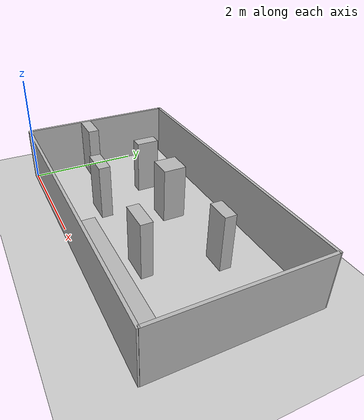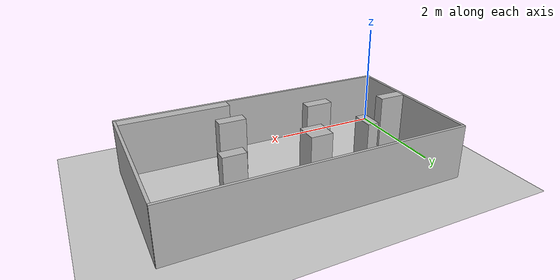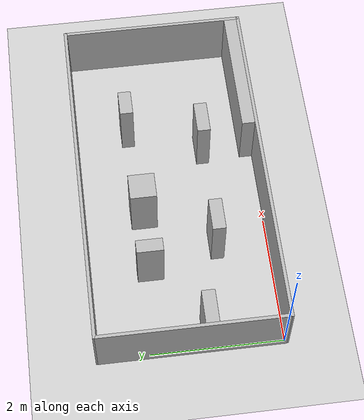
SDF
<sdf version="1.6">
  <world name="ttk4192_world">
    <include>
      <uri>model://sun</uri>
    </include>
    <include>
      <uri>model://ground_plane</uri>
    </include>
    <model name="wall_bottom">
      <pose>2.605 -0.025 0.5 0 0 0</pose>
      <static>true</static>
      <link name="link">
        <collision name="collision">
          <geometry>
            <box>
              <size>5.3 0.05 1</size>
            </box>
          </geometry>
        </collision>
        <visual name="visual">
          <geometry>
            <box>
              <size>5.3 0.05 1</size>
            </box>
          </geometry>
        </visual>
      </link>
    </model>
    <model name="wall_top">
      <pose>2.605 2.775 0.5 0 0 0</pose>
      <static>true</static>
      <link name="link">
        <collision name="collision">
          <geometry>
            <box>
              <size>5.3 0.05 1</size>
            </box>
          </geometry>
        </collision>
        <visual name="visual">
          <geometry>
            <box>
              <size>5.3 0.05 1</size>
            </box>
          </geometry>
        </visual>
      </link>
    </model>
    <model name="wall_left">
      <pose>-0.025 1.375 0.5 0 0 0</pose>
      <static>true</static>
      <link name="link">
        <collision name="collision">
          <geometry>
            <box>
              <size>0.05 2.8 1</size>
            </box>
          </geometry>
        </collision>
        <visual name="visual">
          <geometry>
            <box>
              <size>0.05 2.8 1</size>
            </box>
          </geometry>
        </visual>
      </link>
    </model>
    <model name="wall_right">
      <pose>5.235 1.375 0.5 0 0 0</pose>
      <static>true</static>
      <link name="link">
        <collision name="collision">
          <geometry>
            <box>
              <size>0.05 2.8 1</size>
            </box>
          </geometry>
        </collision>
        <visual name="visual">
          <geometry>
            <box>
              <size>0.05 2.8 1</size>
            </box>
          </geometry>
        </visual>
      </link>
    </model>
    <model name="box_wall_right">
      <pose>4.21 0.1 0.5 0 0 0</pose>
      <static>true</static>
      <link name="link">
        <collision name="collision">
          <geometry>
            <box>
              <size>2.0 0.2 1</size>
            </box>
          </geometry>
        </collision>
        <visual name="visual">
          <geometry>
            <box>
              <size>2.0 0.2 1</size>
            </box>
          </geometry>
        </visual>
      </link>
    </model>
    <model name="box_wall_left">
      <pose>0.25 1.1 0.5 0 0 0</pose>
      <static>true</static>
      <link name="link">
        <collision name="collision">
          <geometry>
            <box>
              <size>0.5 0.2 1</size>
            </box>
          </geometry>
        </collision>
        <visual name="visual">
          <geometry>
            <box>
              <size>0.5 0.2 1</size>
            </box>
          </geometry>
        </visual>
      </link>
    </model>
    <model name="box_wp1">
      <pose>1.7 0.8 0.5 0 0 0</pose>
      <static>true</static>
      <link name="link">
        <collision name="collision">
          <geometry>
            <box>
              <size>0.5 0.2 1</size>
            </box>
          </geometry>
        </collision>
        <visual name="visual">
          <geometry>
            <box>
              <size>0.5 0.2 1</size>
            </box>
          </geometry>
        </visual>
      </link>
    </model>
    <model name="box_wp2">
      <pose>3.41 0.8 0.5 0 0 0</pose>
      <static>true</static>
      <link name="link">
        <collision name="collision">
          <geometry>
            <box>
              <size>0.5 0.2 1</size>
            </box>
          </geometry>
        </collision>
        <visual name="visual">
          <geometry>
            <box>
              <size>0.5 0.2 1</size>
            </box>
          </geometry>
        </visual>
      </link>
    </model>
    <model name="random_1">
      <pose>1.3 1.85 0.5 0 0 0</pose>
      <static>true</static>
      <link name="link">
        <collision name="collision">
          <geometry>
            <box>
              <size>0.2 0.4 1</size>
            </box>
          </geometry>
        </collision>
        <visual name="visual">
          <geometry>
            <box>
              <size>0.2 0.4 1</size>
            </box>
          </geometry>
        </visual>
      </link>
    </model>
    <model name="random_2">
      <pose>2.3 1.85 0.5 0 0 0</pose>
      <static>true</static>
      <link name="link">
        <collision name="collision">
          <geometry>
            <box>
              <size>0.4 0.4 1</size>
            </box>
          </geometry>
        </collision>
        <visual name="visual">
          <geometry>
            <box>
              <size>0.4 0.4 1</size>
            </box>
          </geometry>
        </visual>
      </link>
    </model>
    <model name="box_wp6">
      <pose>3.81 1.95 0.5 0 0 0</pose>
      <static>true</static>
      <link name="link">
        <collision name="collision">
          <geometry>
            <box>
              <size>0.4 0.2 1</size>
            </box>
          </geometry>
        </collision>
        <visual name="visual">
          <geometry>
            <box>
              <size>0.4 0.2 1</size>
            </box>
          </geometry>
        </visual>
      </link>
    </model>
  </world>
</sdf>
